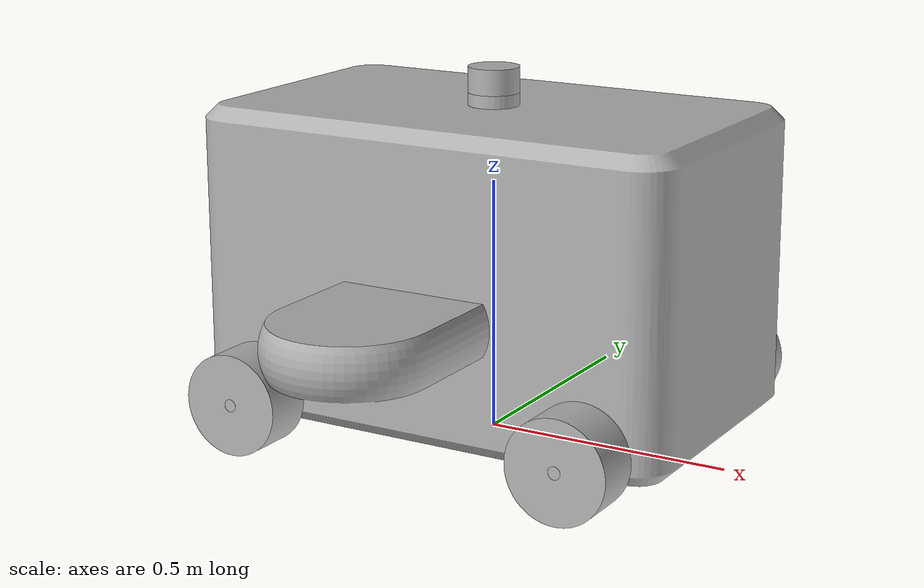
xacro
<?xml version="1.0" ?>
<robot name="mobile_robot" xmlns:xacro="http://www.ros.org/wiki/xacro">

<xacro:include filename="$(find mobile_robot_description)/urdf/materials.xacro" />
<xacro:include filename="$(find mobile_robot_description)/urdf/mobile_robot.trans" />
<xacro:include filename="$(find mobile_robot_description)/gazebo/mobile_robot_materials.gazebo" />
<xacro:include filename="$(find mobile_robot_description)/gazebo/mobile_robot_physics.gazebo" />
<xacro:include filename="$(find mobile_robot_description)/gazebo/mobile_robot_plugins.gazebo" />
<link name="dummy">
</link>
<link name="base_link">
  <inertial>
    <origin rpy="0 0 0" xyz="1.1880172534914988e-15 1.8117263115745358e-14 0.3472850110892992"/>
    <mass value="295.3848903151669"/>
    <inertia ixx="20.2347752" ixy="0.0" ixz="0.0" iyy="31.3193688" iyz="0.0" izz="34.8342085"/>
  </inertial>
  <visual>
    <origin rpy="0 0 0" xyz="0 0 0"/>
    <geometry>
      <mesh filename="package://mobile_robot_description/meshes/base_link.stl" scale="0.001 0.001 0.001"/>
    </geometry>
    <material name="silver_default"/>
  </visual>
  <collision>
    <origin rpy="0 0 0" xyz="0 0 0"/>
    <geometry>
      <mesh filename="package://mobile_robot_description/meshes/base_link.stl" scale="0.001 0.001 0.001"/>
    </geometry>
  </collision>
</link>

<link name="wheel_fl_1">
  <inertial>
    <origin rpy="0 0 0" xyz="-2.070565940925917e-14 0.0 1.189326415129699e-14"/>
    <mass value="24.27616635676298"/>
    <inertia ixx="0.081869" ixy="0.0" ixz="0.0" iyy="0.123277" iyz="-0.0" izz="0.081869"/>
  </inertial>
  <visual>
    <origin rpy="0 0 0" xyz="-0.35 -0.35 -0.1"/>
    <geometry>
      <mesh filename="package://mobile_robot_description/meshes/wheel_fl_1.stl" scale="0.001 0.001 0.001"/>
    </geometry>
    <material name="silver_default"/>
  </visual>
  <collision>
    <origin rpy="0 0 0" xyz="-0.35 -0.35 -0.1"/>
    <geometry>
      <mesh filename="package://mobile_robot_description/meshes/wheel_fl_1.stl" scale="0.001 0.001 0.001"/>
    </geometry>
  </collision>
</link>

<link name="wheel_fr_1">
  <inertial>
    <origin rpy="0 0 0" xyz="-2.070565940925917e-14 1.6653345369377348e-15 1.1907141939104804e-14"/>
    <mass value="24.27616635676298"/>
    <inertia ixx="0.081869" ixy="-0.0" ixz="0.0" iyy="0.123277" iyz="-0.0" izz="0.081869"/>
  </inertial>
  <visual>
    <origin rpy="0 0 0" xyz="-0.35 0.35 -0.1"/>
    <geometry>
      <mesh filename="package://mobile_robot_description/meshes/wheel_fr_1.stl" scale="0.001 0.001 0.001"/>
    </geometry>
    <material name="silver_default"/>
  </visual>
  <collision>
    <origin rpy="0 0 0" xyz="-0.35 0.35 -0.1"/>
    <geometry>
      <mesh filename="package://mobile_robot_description/meshes/wheel_fr_1.stl" scale="0.001 0.001 0.001"/>
    </geometry>
  </collision>
</link>

<link name="wheel_br_1">
  <inertial>
    <origin rpy="0 0 0" xyz="-2.0761170560490427e-14 1.6653345369377348e-15 1.189326415129699e-14"/>
    <mass value="24.27616635676298"/>
    <inertia ixx="0.081869" ixy="0.0" ixz="0.0" iyy="0.123277" iyz="-0.0" izz="0.081869"/>
  </inertial>
  <visual>
    <origin rpy="0 0 0" xyz="0.35 0.35 -0.1"/>
    <geometry>
      <mesh filename="package://mobile_robot_description/meshes/wheel_br_1.stl" scale="0.001 0.001 0.001"/>
    </geometry>
    <material name="silver_default"/>
  </visual>
  <collision>
    <origin rpy="0 0 0" xyz="0.35 0.35 -0.1"/>
    <geometry>
      <mesh filename="package://mobile_robot_description/meshes/wheel_br_1.stl" scale="0.001 0.001 0.001"/>
    </geometry>
  </collision>
</link>

<link name="lidar_1">
  <inertial>
    <origin rpy="0 0 0" xyz="5.790023100122031e-18 2.2129722338883767e-14 0.0249999999999998"/>
    <mass value="3.082687791334983"/>
    <inertia ixx="0.002569" ixy="-0.0" ixz="0.0" iyy="0.002569" iyz="0.0" izz="0.003853"/>
  </inertial>
  <visual>
    <origin rpy="0 0 0" xyz="-0.0 -0.0 -0.675"/>
    <geometry>
      <mesh filename="package://mobile_robot_description/meshes/lidar_1.stl" scale="0.001 0.001 0.001"/>
    </geometry>
    <material name="silver_default"/>
  </visual>
  <collision>
    <origin rpy="0 0 0" xyz="-0.0 -0.0 -0.675"/>
    <geometry>
      <mesh filename="package://mobile_robot_description/meshes/lidar_1.stl" scale="0.001 0.001 0.001"/>
    </geometry>
  </collision>
</link>

<link name="wheel_bl_1">
  <inertial>
    <origin rpy="0 0 0" xyz="-2.0761170560490427e-14 0.0 1.189326415129699e-14"/>
    <mass value="24.27616635676298"/>
    <inertia ixx="0.081869" ixy="0.0" ixz="0.0" iyy="0.123277" iyz="-0.0" izz="0.081869"/>
  </inertial>
  <visual>
    <origin rpy="0 0 0" xyz="0.35 -0.35 -0.1"/>
    <geometry>
      <mesh filename="package://mobile_robot_description/meshes/wheel_bl_1.stl" scale="0.001 0.001 0.001"/>
    </geometry>
    <material name="silver_default"/>
  </visual>
  <collision>
    <origin rpy="0 0 0" xyz="0.35 -0.35 -0.1"/>
    <geometry>
      <mesh filename="package://mobile_robot_description/meshes/wheel_bl_1.stl" scale="0.001 0.001 0.001"/>
    </geometry>
  </collision>
</link>

<joint name="dummy_joint" type="fixed">
  <parent link="dummy"/>
  <child link="base_link"/>
</joint>

<joint name="motor_fl" type="continuous">
  <origin rpy="0 0 0" xyz="0.35 0.35 0.1"/>
  <parent link="base_link"/>
  <child link="wheel_fl_1"/>
  <axis xyz="0.0 1.0 0.0"/>
</joint>

<joint name="motor_fr" type="continuous">
  <origin rpy="0 0 0" xyz="0.35 -0.35 0.1"/>
  <parent link="base_link"/>
  <child link="wheel_fr_1"/>
  <axis xyz="0.0 1.0 0.0"/>
</joint>

<joint name="motor_br" type="continuous">
  <origin rpy="0 0 0" xyz="-0.35 -0.35 0.1"/>
  <parent link="base_link"/>
  <child link="wheel_br_1"/>
  <axis xyz="0.0 1.0 0.0"/>
</joint>

<joint name="lidar_joint" type="fixed">
  <origin rpy="0 0 0" xyz="0.0 0.0 0.675"/>
  <parent link="base_link"/>
  <child link="lidar_1"/>
</joint>

<joint name="motor_bl" type="continuous">
  <origin rpy="0 0 0" xyz="-0.35 0.35 0.1"/>
  <parent link="base_link"/>
  <child link="wheel_bl_1"/>
  <axis xyz="0.0 1.0 0.0"/>
</joint>

</robot>

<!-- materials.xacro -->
<robot name="mobile_robot" xmlns:xacro="http://www.ros.org/wiki/xacro" >

<material name="silver_default">
  <color rgba="0.700 0.700 0.700 1.000"/>
</material>

</robot>

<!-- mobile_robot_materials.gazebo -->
<robot name="mobile_robot" xmlns:xacro="http://www.ros.org/wiki/xacro" >

<xacro:property name="body_color" value="Gazebo/Grey" />
<xacro:property name="wheel_color" value="Gazebo/Black" />
<xacro:property name="sensor_color" value="Gazebo/Red" />

<gazebo reference="base_link">
  <material>${body_color}</material>
</gazebo>

<gazebo reference="wheel_fl_1">
  <material>${wheel_color}</material>
</gazebo>

<gazebo reference="wheel_fr_1">
  <material>${wheel_color}</material>
</gazebo>

<gazebo reference="wheel_br_1">
  <material>${wheel_color}</material>
</gazebo>

<gazebo reference="lidar_1">
  <material>${sensor_color}</material>
</gazebo>

<gazebo reference="wheel_bl_1">
  <material>${wheel_color}</material>
</gazebo>

</robot>
